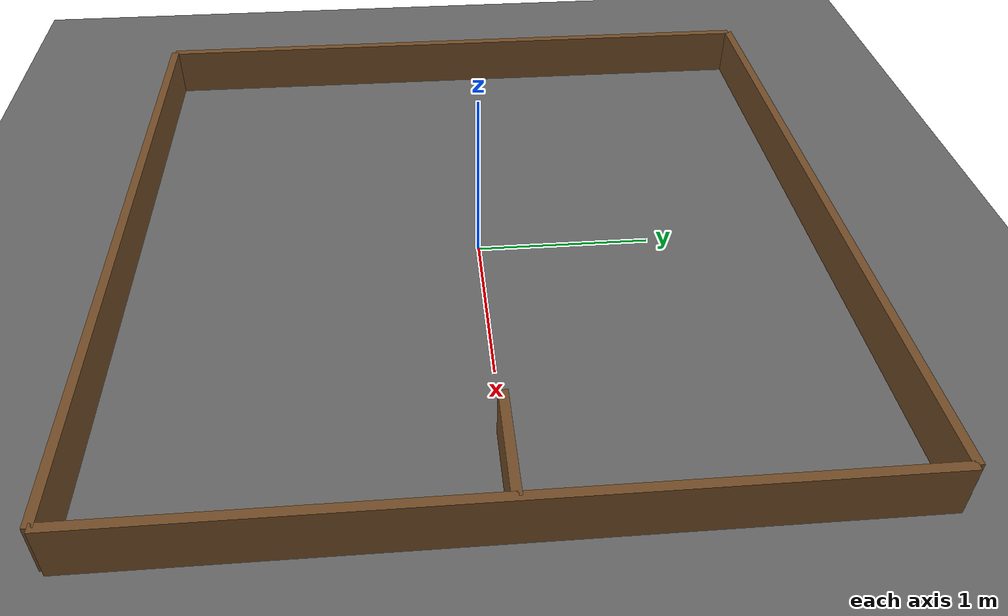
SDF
<?xml version="1.0" ?>
<sdf version="1.10">
  <world name="empty_world">
    <scene>
      <ambient>0.6 0.6 0.6 1</ambient>
      <background>0.5 0.5 0.5 1</background>
      <shadows>false</shadows>
    </scene>

    <!-- Explicit physics configuration (ODE) for better contact / mecanum behavior -->
    <physics name="ode" type="ode">
      <max_step_size>0.001</max_step_size>
      <real_time_factor>1.0</real_time_factor>
      <real_time_update_rate>1000</real_time_update_rate>

      <ode>
        <solver>
          <type>quick</type>
          <iters>80</iters>
          <sor>1.3</sor>
        </solver>

        <constraints>
          <cfm>1e-6</cfm>
          <erp>0.2</erp>
          <contact_max_correcting_vel>2.0</contact_max_correcting_vel>
          <contact_surface_layer>0.001</contact_surface_layer>
        </constraints>
      </ode>
    </physics>

    <plugin filename="gz-sim-physics-system" name="gz::sim::systems::Physics"/>
    <plugin filename="gz-sim-user-commands-system" name="gz::sim::systems::UserCommands"/>
    <plugin filename="gz-sim-scene-broadcaster-system" name="gz::sim::systems::SceneBroadcaster"/>
    <plugin filename="gz-sim-sensors-system" name="gz::sim::systems::Sensors">
      <render_engine>ogre2</render_engine>
    </plugin>

    <light name="sun" type="directional">
      <cast_shadows>false</cast_shadows>
      <pose>0 0 10 0 0 0</pose>
      <direction>-0.5 0.5 -1</direction>
    </light>

    <model name="ground">
      <static>true</static>
      <pose>0 0 -0.05 0 0 0</pose>
      <link name="ground_link">
        <collision name="ground_collision">
          <geometry>
            <box><size>50 50 0.1</size></box>
          </geometry>

          <!-- Ground friction (helps consistency across backends / contact tuning) -->
          <surface>
            <friction>
              <ode>
                <mu>1.2</mu>
                <mu2>1.2</mu2>
              </ode>
            </friction>
          </surface>
        </collision>

        <visual name="ground_visual">
          <geometry>
            <box><size>50 50 0.1</size></box>
          </geometry>
          <material>
            <ambient>0.4 0.4 0.4 1</ambient>
            <diffuse>0.4 0.4 0.4 1</diffuse>
            <specular>0.05 0.05 0.05 1</specular>
          </material>
        </visual>
      </link>
    </model>

    <!-- Walls: unique names -->
    <include>
      <uri>model://wall400cm</uri>
      <name>wall_pos_x</name>
      <pose>2.0 0 0.15 0 0 1.57</pose>
    </include>

    <include>
      <uri>model://wall400cm</uri>
      <name>wall_neg_x</name>
      <pose>-2.0 0 0.15 0 0 1.57</pose>
    </include>

    <include>
      <uri>model://wall400cm</uri>
      <name>wall_pos_y</name>
      <pose>0 2.0 0.15 0 0 0</pose>
    </include>

    <include>
      <uri>model://wall400cm</uri>
      <name>wall_neg_y</name>
      <pose>0 -2.0 0.15 0 0 0</pose>
    </include>

    <include>
      <uri>model://wall60cm</uri>
      <name>wall_front</name>
      <pose>1.7 0 0.15 0 0 0</pose>
    </include>

  </world>
</sdf>

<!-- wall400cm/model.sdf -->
<sdf version="1.10">
    <model name="wall400cm">
        <static>true</static>
        <pose>0 0 0.025 0 0 0</pose> <!-- z=0.025 perquè reposi a terra (meitat del gruix) -->

        <link name="link">
            <collision name="collision">
            <geometry>
                <box>
                <size>4.0 0.05 0.3</size>
                </box>
            </geometry>
            </collision>

            <visual name="visual">
            <geometry>
                <box>
                <size>4.0 0.05 0.3</size>
                </box>
            </geometry>
            <material>
                <ambient>0.45 0.30 0.15 1</ambient>
                <diffuse>0.45 0.30 0.15 1</diffuse>
            </material>
            </visual>
        </link>
    </model>
</sdf>

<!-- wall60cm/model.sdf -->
<sdf version="1.10">
    <model name="wall60cm">
        <static>true</static>
        <pose>0 0 0.025 0 0 0</pose> <!-- z=0.025 perquè reposi a terra (meitat del gruix) -->

        <link name="link">
            <collision name="collision">
            <geometry>
                <box>
                <size>0.6 0.05 0.3</size>
                </box>
            </geometry>
            </collision>

            <visual name="visual">
            <geometry>
                <box>
                <size>0.6 0.05 0.3</size>
                </box>
            </geometry>
            <material>
                <ambient>0.45 0.30 0.15 1</ambient>
                <diffuse>0.45 0.30 0.15 1</diffuse>
            </material>
            </visual>
        </link>
    </model>
</sdf>
